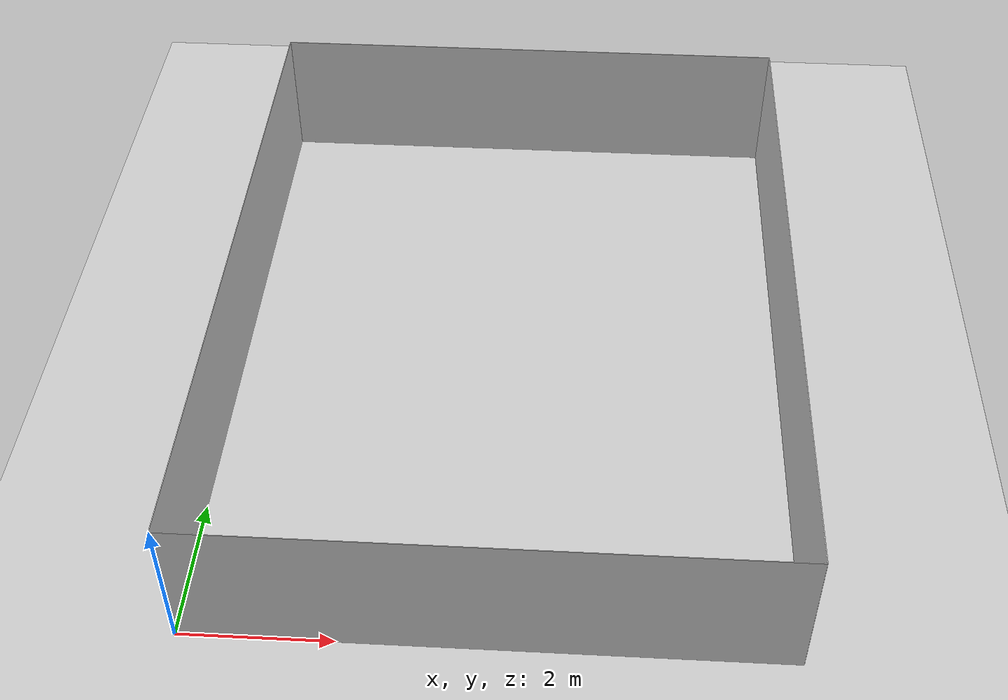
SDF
<?xml version="1.0"?>
<sdf version='1.8'>
    <world name='office'>
        <physics name='1ms' type='ignored'>
            <max_step_size>0.003</max_step_size>
            <real_time_factor>1</real_time_factor>
            <real_time_update_rate>1000</real_time_update_rate>
        </physics>
        <plugin name='ignition::gazebo::systems::Physics' filename='ignition-gazebo-physics-system' />
        <plugin name='ignition::gazebo::systems::UserCommands' filename='ignition-gazebo-user-commands-system' />
        <plugin name='ignition::gazebo::systems::SceneBroadcaster' filename='ignition-gazebo-scene-broadcaster-system' />
        <plugin name='ignition::gazebo::systems::Contact' filename='ignition-gazebo-contact-system' />
        <light name='light' type='directional'>
            <cast_shadows>1</cast_shadows>
            <pose>0 0 10 0 -0 0</pose>
            <diffuse>0.83 0.81 0.62 0.57</diffuse>
            <attenuation>
                <range>10</range>
                <constant>0.5000000000000000</constant>
                <linear>0.01</linear>
                <quadratic>0.001</quadratic>
            </attenuation>
            <direction>-0.0 0.0 -0.1</direction>
            <spot>
                <inner_angle>0</inner_angle>
                <outer_angle>0</outer_angle>
                <falloff>0</falloff>
            </spot>
        </light>
        <gravity>0 0 -9.8</gravity>
        <magnetic_field>6e-06 2.3e-05 -4.2e-05</magnetic_field>
        <atmosphere type='adiabatic' />
        <scene>
            <ambient>0.4 0.4 0.4 1</ambient>
            <background>0.7 0.7 0.7 1</background>
            <shadows>1</shadows>
        </scene>
        <model name='ground_plane'>
            <static>1</static>
            <link name='link'>
                <collision name='collision'>
                    <geometry>
                        <plane>
                            <normal>0 0 1</normal>
                            <size>7.7 10.0</size>
                        </plane>
                    </geometry>
                    <surface>
                        <friction>
                            <ode />
                        </friction>
                        <bounce />
                        <contact />
                    </surface>
                </collision>
                <visual name='visual'>
                    <geometry>
                        <plane>
                            <normal>0 0 1</normal>
                            <size>7.7 10.0</size>
                        </plane>
                    </geometry>
		    <material>
			<diffuse>0.8 0.8 0.8 1</diffuse>
			<specular>0.8 0.8 0.8 1</specular>
			<pbr>
			    <metal>
				    <albedo_map>materials/floor.jpg</albedo_map>
		        </metal>
			</pbr>
                    </material>
                    <plugin name='__default__' filename='__default__' />
                </visual>
            </link>
            <plugin name='__default__' filename='__default__' />
            <pose>3.85 5 0 0 0 0</pose>
        </model>

        <model name='border'>
            <pose>0 0 1 0 0 0</pose>
            <static>true</static>
            <link name='wall1'>
                <pose>0 5 0 0 0 0</pose>
                <static>true</static>
                <collision name='wall1_collision'>
                    <geometry>
                        <box>
                            <size>0.01 10 2</size>
                        </box>
                    </geometry>
                </collision>
                <visual name='wall1_visual'>
                    <geometry>
                        <box>
                            <size>0.01 10 2</size>
                        </box>
                    </geometry>
                    <material>
                        <ambient>0.8 0.8 0.8 1</ambient>
                        <diffuse>0.8 0.8 0.8 1</diffuse>
                        <specular>0 0 0 1</specular>
                        <pbr>
                            <metal>
                                <albedo_map>materials/white-texture.jpg</albedo_map>
                            </metal>
                        </pbr>
                    </material>
                </visual>
            </link>
            <link name='wall2'>
                <pose>7.7 5 0 0 0 0</pose>
                <static>true</static>
                <collision name='wall2_collision'>
                    <geometry>
                        <box>
                            <size>0.01 10 2</size>
                        </box>
                    </geometry>
                </collision>
                <visual name='wall2_visual'>
                    <geometry>
                        <box>
                            <size>0.01 10 2</size>
                        </box>
                    </geometry>
                    <material>
                        <ambient>0.8 0.8 0.8 1</ambient>
                        <diffuse>0.8 0.8 0.8 1</diffuse>
                        <specular>0 0 0 1</specular>
                        <pbr>
                            <metal>
                                <albedo_map>materials/white-texture.jpg</albedo_map>
                            </metal>
                        </pbr>
                    </material>
                </visual>
            </link>
            <link name='wall3'>
                <pose>3.85 10.0 0 0 0 0</pose>
                <static>true</static>
                <collision name='wall3_collision'>
                    <geometry>
                        <box>
                            <size>7.7 0.01 2</size>
                        </box>
                    </geometry>
                </collision>
                <visual name='wall3_visual'>
                    <geometry>
                        <box>
                            <size>7.7 0.01 2</size>
                        </box>
                    </geometry>
                    <material>
                        <ambient>0.8 0.8 0.8 1</ambient>
                        <diffuse>0.8 0.8 0.8 1</diffuse>
                        <specular>0 0 0 1</specular>
                        <pbr>
                            <metal>
                                <albedo_map>materials/white-texture.jpg</albedo_map>
                            </metal>
                        </pbr>
                    </material>
                </visual>
            </link>
            <link name='wall4'>
                <pose>3.85 0 0 0 0 0</pose>
                <static>true</static>
                <collision name='wall4_collision'>
                    <geometry>
                        <box>
                            <size>7.7 0.01 2</size>
                        </box>
                    </geometry>
                    <material>
                        <ambient>0.8 0.8 0.8 1</ambient>
                        <diffuse>0.8 0.8 0.8 1</diffuse>
                        <specular>0 0 0 1</specular>
                        <pbr>
                            <metal>
                                <albedo_map>materials/white-texture.jpg</albedo_map>
                            </metal>
                        </pbr>
                    </material>
                </collision>
                <visual name='wall4_visual'>
                    <geometry>
                        <box>
                            <size>7.7 0.01 2</size>
                        </box>
                    </geometry>
                    <material>
                        <ambient>0.8 0.8 0.8 1</ambient>
                        <diffuse>0.8 0.8 0.8 1</diffuse>
                        <specular>0 0 0 1</specular>
                        <pbr>
                            <metal>
                                <albedo_map>materials/white-texture.jpg</albedo_map>
                            </metal>
                        </pbr>
                    </material>
                </visual>
            </link>
        </model>
    </world>
</sdf>
